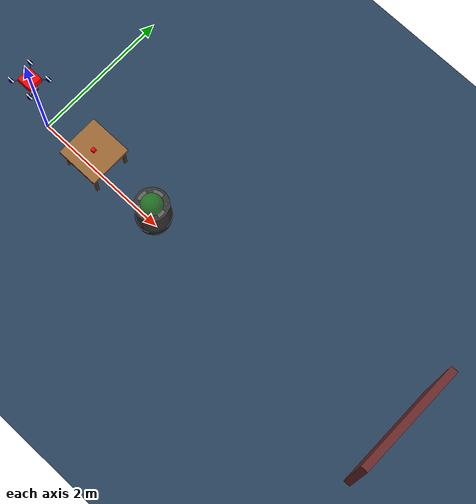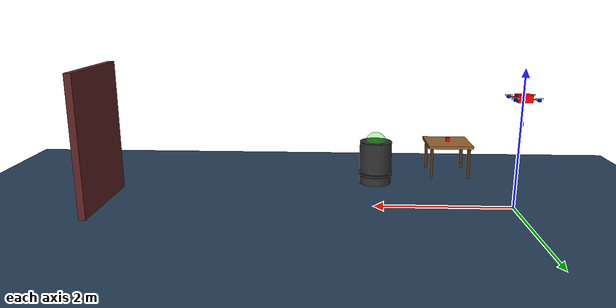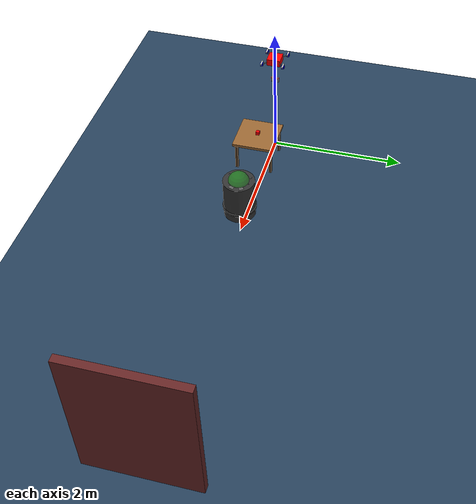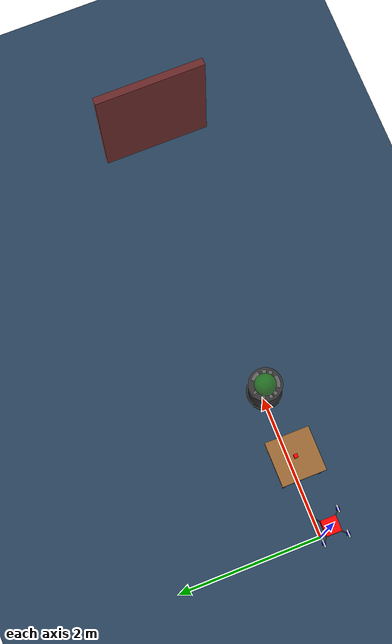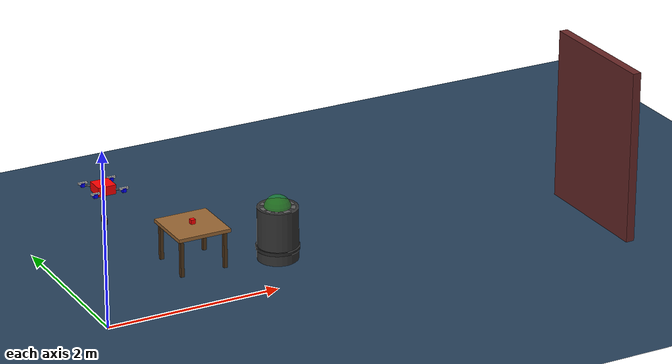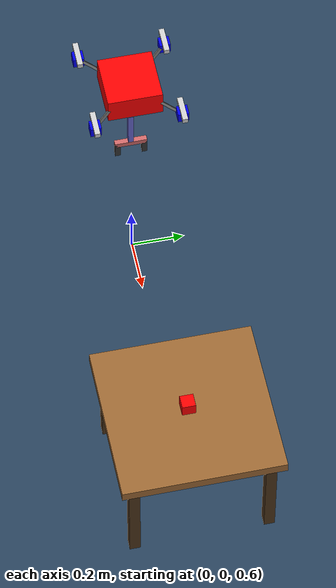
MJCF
<mujoco model="quad scene">
  <include file="quad_gripper_v2.xml"/>

  <statistic center="0 0 0.1" extent="0.2" meansize=".05"/>

  <visual>
    <headlight diffuse="0.6 0.6 0.6" ambient="0.3 0.3 0.3" specular="0 0 0"/>
    <rgba haze="0.15 0.25 0.35 1"/>
    <global azimuth="-20" elevation="-20" ellipsoidinertia="true"/>
  </visual>

  <asset>
    <texture type="skybox" builtin="gradient" rgb1="0.3 0.5 0.7" rgb2="0 0 0" width="512" height="3072"/>
    <texture type="2d" name="groundplane" builtin="checker" mark="edge" rgb1="0.2 0.3 0.4" rgb2="0.1 0.2 0.3"
      markrgb="0.8 0.8 0.8" width="300" height="300"/>
    <material name="groundplane" texture="groundplane" texuniform="true" texrepeat="5 5" reflectance="0.2"/>
    <material name="trashbin_mat" rgba="0.2 0.2 0.2 1"/>
  </asset>

  <worldbody>
    <camera
      name="world_camera"
      pos="0.5 -4 1"
      mode="fixed"
      xyaxes="1 0 0   0 0 1"/>
    <light pos="0 0 1.5" dir="0 0 -1" directional="true"/>
    <geom name="floor" size="0 0 0.01" pos="0 0 -0.01" type="plane" material="groundplane"/>

    <!-- 桌子本体，位置修改为 x=1 -->
    <body name="table" pos="1 0 0.96">
      <geom name="table_top" type="box" size="0.3 0.3 0.02" rgba="0.6 0.4 0.2 1"/>
      <geom type="box" pos=" 0.25  0.25 -0.23" size="0.02 0.02 0.2" rgba="0.3 0.2 0.1 1"/>
      <geom type="box" pos=" 0.25 -0.25 -0.23" size="0.02 0.02 0.2" rgba="0.3 0.2 0.1 1"/>
      <geom type="box" pos="-0.25  0.25 -0.23" size="0.02 0.02 0.2" rgba="0.3 0.2 0.1 1"/>
      <geom type="box" pos="-0.25 -0.25 -0.23" size="0.02 0.02 0.2" rgba="0.3 0.2 0.1 1"/>
    </body>

    <!-- 抓取物体1：小立方体，位置修改为 x=1 -->
    <body name="obj_cube" pos="1 0 1.01">
      <joint name="obj_cube:joint" type="free" damping="0.001" frictionloss="0" />
      <geom name="obj_cube_geom" type="box" size="0.025 0.025 0.025" rgba="1 0 0 1" mass="0.001"
            condim="4" solimp="2 1 0.01" solref="0.01 1" friction="1 0.005 0.0001" />
      <site name="obj_cube_site" pos="0 0 0" size="0.015" rgba="1 0 0 0.3" type="sphere" group="1" />
    </body>

    <body name="trash_bin" pos="2 0 0.5">
      <!-- 底盘：半径增大为原来的1.5倍 -->
      <geom name="trash_bin_base" type="cylinder" pos="0 0 0.01" size="0.24 0.02" rgba="0.15 0.15 0.15 1"
            condim="6" solimp="0.9 0.95 0.001" friction="1 0.1 0.001"/>

      <!-- 桶体（外壳）：半径增大为原来的1.5倍 -->
      <geom name="trash_bin_body" type="cylinder" pos="0 0 0.17" size="0.225 0.3" rgba="0.2 0.2 0.2 1"
            condim="6" solimp="0.9 0.95 0.001" friction="1 0.1 0.001"/>

      <!-- 内壁，半径增大为原来的1.5倍，禁用碰撞 -->
      <geom name="trash_bin_inner" type="cylinder" pos="0 0 0.17" size="0.195 0.3" rgba="0.8 0.8 0.8 0.3"
            contype="0" conaffinity="0"/>

      <!-- 站位点，可用于检测放入位置 -->
      <site name="trash_bin_site" pos="0 0 0.45" size="0.15" rgba="0 1 0 0.3" type="sphere"/>
    </body>

    <!-- 墙板，放在 x=3m，y=0，z=1m（高2米，厚0.1米，宽1.5米） -->
    <geom name="wall_panel" type="box" pos="6 0 1" size="0.05 0.75 1" rgba="0.4 0.15 0.15 1" friction="1 0.1 0.001"/>

  </worldbody>
</mujoco>

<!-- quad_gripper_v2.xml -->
<mujoco model="444">
<option integrator="implicit" timestep="0.005" gravity="0 0 -9.81"/>

  <default>
    <default class="444">
    </default>
  </default>

<worldbody>
  <body name="444" pos="0 0 1.6" childclass="444">
    <inertial pos="0 0 0" mass="2" diaginertia="0.01860 0.01860 0.03215"/>
    <freejoint/>
    <geom name="base" type="box" size="0.1 0.1 0.05" rgba="1 0 0 1"/>

    <!-- 无人机前视摄像头（前向固定） -->
  <camera name="front_cam"
          pos="0.05 0 -0.1"
          mode="fixed"
          resolution="640 480"
          sensorsize="0.006846 0.003853"
          focalpixel="615.3451538 615.4043579"
          orthographic="false"
          xyaxes="0 -1 0   0.5 0 0.866"/>

    <!-- X+ Y+ : 前左电机 -->
    <body name="arm_fl">
      <geom type="box" fromto="0 0 0 0.159 0.159 0" size="0.005" rgba="0.4 0.4 0.4 1"/>
      <body name="motor_fl" pos="0.159 0.159 0">
        <geom type="box" size="0.02 0.02 0.02" rgba="0 0 1 1"/>
        <body name="prop_fl">
          <joint name="rotor_fl" type="hinge" axis="0 0 -1" damping="0.2"/>
          <geom type="box" size="0.05 0.01 0.01" pos="0 0 0.02" rgba="0.8 0.8 0.8 1" contype="0" conaffinity="0"/>
        </body>
      </body>
    </body>

    <!-- X+ Y- : 前右电机 -->
    <body name="arm_fr">
      <geom type="box" fromto="0 0 0 0.159 -0.159 0" size="0.005" rgba="0.4 0.4 0.4 1"/>
      <body name="motor_fr" pos="0.159 -0.159 0">
        <geom type="box" size="0.02 0.02 0.02" rgba="0 0 1 1"/>
        <body name="prop_fr">
          <joint name="rotor_fr" type="hinge" axis="0 0 1" damping="0.2"/>
          <geom type="box" size="0.05 0.01 0.01" pos="0 0 0.02" rgba="0.8 0.8 0.8 1" contype="0" conaffinity="0"/>
        </body>
      </body>
    </body>

    <!-- X- Y+ : 后左电机 -->
    <body name="arm_bl">
      <geom type="box" fromto="0 0 0 -0.159 0.159 0" size="0.005" rgba="0.4 0.4 0.4 1"/>
      <body name="motor_bl" pos="-0.159 0.159 0">
        <geom type="box" size="0.02 0.02 0.02" rgba="0 0 1 1"/>
        <body name="prop_bl">
          <joint name="rotor_bl" type="hinge" axis="0 0 1" damping="0.2"/>
          <geom type="box" size="0.05 0.01 0.01" pos="0 0 0.02" rgba="0.8 0.8 0.8 1" contype="0" conaffinity="0"/>
        </body>
      </body>
    </body>

    <!-- X- Y- : 后右电机 -->
    <body name="arm_br">
      <geom type="box" fromto="0 0 0 -0.159 -0.159 0" size="0.005" rgba="0.4 0.4 0.4 1"/>
      <body name="motor_br" pos="-0.159 -0.159 0">
        <geom type="box" size="0.02 0.02 0.02" rgba="0 0 1 1"/>
        <body name="prop_br">
          <joint name="rotor_br" type="hinge" axis="0 0 -1" damping="0.2"/>
          <geom type="box" size="0.05 0.01 0.01" pos="0 0 0.02" rgba="0.8 0.8 0.8 1" contype="0" conaffinity="0"/>
        </body>
      </body>
    </body>
    <site name="imu" pos="0 0 0.0"/>
    <site name="motor1_site" pos="0.159 0.159 0.013"/>
    <site name="motor2_site" pos="0.159 -0.159 0.013"/>
    <site name="motor3_site" pos="-0.159 0.159 0.013"/>
    <site name="motor4_site" pos="-0.159 -0.159 0.013"/>

    <!-- ====== 二轴机械臂开始 ====== -->
    <body name="link1" pos="0 0 -0.1">
      <inertial pos="0 0 0" mass="0.15" diaginertia="0.0001431 0.0001431 0.0000050"/>
      <geom type="box" size="0.01 0.01 0.075" pos="0 0 0" rgba="0.6 0.6 0.6 1"/>
      <joint name="joint1" type="hinge" pos="0 0 0.075" axis="0 -1 0" damping="0.1"/>

      <body name="link2" pos="0 0 -0.15">
        <inertial pos="0 0 0" mass="0.15" diaginertia="0.0001431 0.0001431 0.0000050"/>
        <geom type="box" size="0.01 0.01 0.075" pos="0 0 0" rgba="0.4 0.4 0.8 1"/>
        <joint name="joint2" type="hinge" pos="0 0 0.075" axis="0 -1 0" damping="0.1"/>

        <!-- 机械臂末端摄像头（指向抓取方向），模拟 RealSense D435 参数 principalpixel="313.393707275391 251.593811035156"-->
        <camera name="gripper_cam"
                pos="0.05 0 0.05"
                xyaxes="0 -1 0 1 0 0"
                mode="fixed"
                resolution="640 480"
                sensorsize="0.006846 0.003853"
                focalpixel="615.345153808594 615.404357910156"
                orthographic="false"/>

        <body name="wrist" pos="0 0 -0.085">
            <inertial pos="0 0 0" mass="0.03" diaginertia="0.0000740 0.0000040 0.0000740"/>
            <geom type="box" size="0.01 0.06 0.01" pos="0 0 0" rgba="0.8 0.4 0.4 1"/>

          <joint name="joint3" type="hinge" pos="0 0 0" axis="0 0 1" damping="0.1"/>

          <body name="gripper_finger1" pos="0 0.05 -0.03">
            <inertial pos="0 0 0" mass="0.009875" diaginertia="0.0000033 0.0000033 0.0000013"/>
            <geom type="box" size="0.01 0.01 0.03" pos="0 0 0" rgba="0.2 0.2 0.2 1"
                   condim="4" solimp="2 1 0.01" solref="0.01 1" friction="1 0.005 0.0001"/>
            <joint name="finger1_joint" type="slide" pos="0 0 0" axis="0 -1 0" range="0 0.04" frictionloss="30"/>
          </body>

          <body name="gripper_finger2" pos="0 -0.05 -0.03">
            <inertial pos="0 0 0" mass="0.009875" diaginertia="0.0000033 0.0000033 0.0000013"/>
            <geom type="box" size="0.01 0.01 0.03" pos="0 0 0" rgba="0.2 0.2 0.2 1"
                   condim="4" solimp="2 1 0.01" solref="0.01 1" friction="1 0.005 0.0001"/>
            <joint name="finger2_joint" type="slide" pos="0 0 0" axis="0 1 0" range="0 0.04" frictionloss="30"/>
          </body>

        </body>
      </body>
    </body>
<!-- ====== 二轴机械臂结束 ====== -->
  </body>
</worldbody>

<equality>
  <joint joint1="finger1_joint" joint2="finger2_joint" solimp="0.95 0.99 0.001" solref="0.005 1"/>
</equality>

<tendon>
  <fixed name="gripper_tendon">
    <joint joint="finger1_joint" coef="0.5"/>
    <joint joint="finger2_joint" coef="0.5"/>
  </fixed>
</tendon>

<actuator>
  <velocity name="fr_motor" joint="rotor_fr" kv="1" gear="0.001" ctrlrange="0 1434.7 "/>
  <velocity name="fl_motor" joint="rotor_fl" kv="1" gear="0.001" ctrlrange="0 1434.7 "/>
  <velocity name="bl_motor" joint="rotor_bl" kv="1" gear="0.001" ctrlrange="0 1434.7 "/>
  <velocity name="br_motor" joint="rotor_br" kv="1" gear="0.001" ctrlrange="0 1434.7 "/>

  <motor class="444" ctrlrange="0 1" gear="0 0 12.5 0 0 -0.2175" site="motor1_site" name="motor1"/>
  <motor class="444" ctrlrange="0 1" gear="0 0 12.5 0 0 0.2175" site="motor2_site" name="motor2"/>
  <motor class="444" ctrlrange="0 1" gear="0 0 12.5 0 0 0.2175" site="motor3_site" name="motor3"/>
  <motor class="444" ctrlrange="0 1" gear="0 0 12.5 0 0 -0.2175" site="motor4_site" name="motor4"/>

    <!-- 添加机械臂关节位置伺服 -->
  <position name="act_joint1" joint="joint1" kp="100" kv="10" ctrlrange="-1.39626 1.39626"/>
  <position name="act_joint2" joint="joint2" kp="100" kv="10" ctrlrange="-2.61799 2.61799"/>
  <position name="act_joint3" joint="joint3" kp="100" kv="10" ctrlrange="-3.14159 3.14159"/>
  <general name="act_finger" tendon="gripper_tendon" forcerange="-100 100" ctrlrange="0 255"  dyntype="none" biastype="affine"
            gainprm="0.01568627451 0 0" biasprm="0 -100 -10" />
            <!-- biastype="affine" 这一设置非常关键，否则指头会滑动 -->
</actuator>

<sensor>
  <gyro name="imu_gyro" site="imu"/>
  <accelerometer name="body_linacc" site="imu"/>
  <framequat name="body_quat" objtype="site" objname="imu"/>
</sensor>

  <!--
    初始“hover”关键帧：
    - qpos 共 16 个标量（7 个自由度 + 9 个铰链/滑动关节）后7个为抓取物体
    - ctrl 共 12 个标量（对应 12 个 actuator）
  -->

</mujoco>
